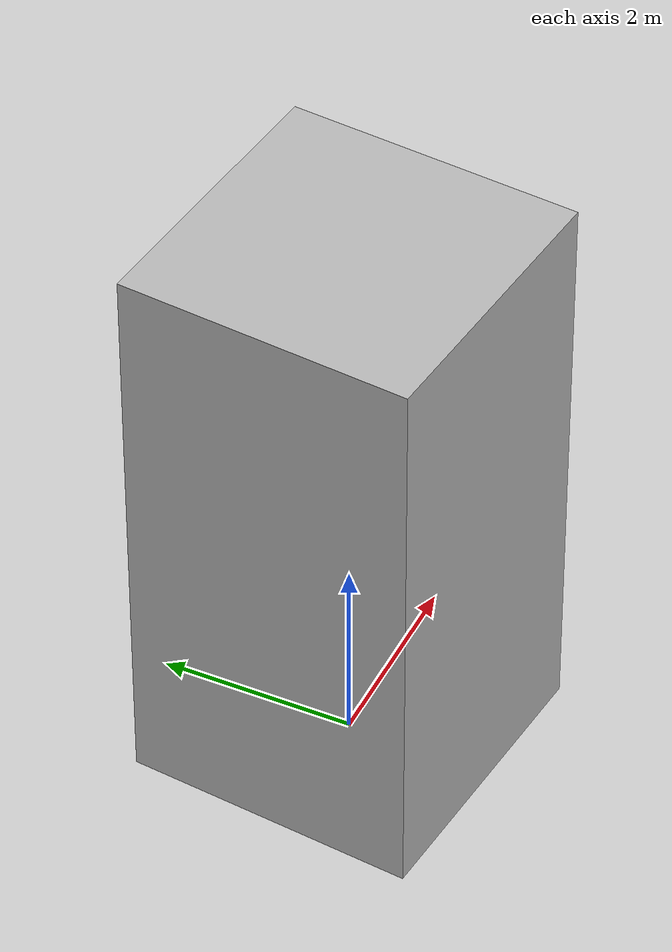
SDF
<?xml version="1.0" ?>
<sdf version="1.6">
  <model name="cityhall_box">
    <static>true</static>
    <link name="link">
      <collision name="collision">
        <geometry>
          <mesh>
            <uri>model://cityhall_box/meshes/cityhall_box.dae</uri>
          </mesh>
        </geometry>
      </collision>
      <visual name="visual">
        <geometry>
          <mesh>
            <uri>model://cityhall_box/meshes/cityhall_box.dae</uri>
          </mesh>
        </geometry>
      </visual>
    </link>
  </model>
</sdf>
